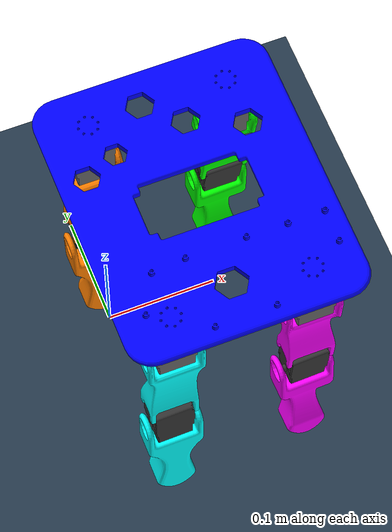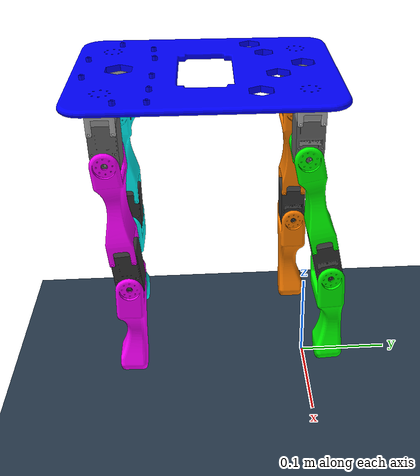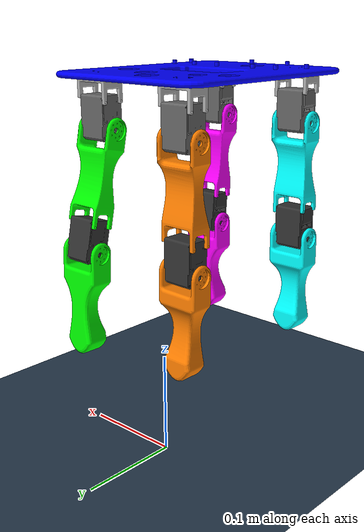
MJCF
<mujoco>
    <compiler angle="radian"/>

    <asset>
        <mesh name="base_mesh" file="mesh/base.STL" scale="0.001 0.001 0.001"/>

        <mesh name="hip_1_mesh" file="mesh/hip1.STL" scale="0.001 0.001 0.001"/>
        <mesh name="hip_3_mesh" file="mesh/hip3.STL" scale="0.001 0.001 0.001"/>
        <mesh name="hip_5_mesh" file="mesh/hip5.STL" scale="0.001 0.001 0.001"/>
        <mesh name="hip_7_mesh" file="mesh/hip7.STL" scale="0.001 0.001 0.001"/>

        <mesh name="hip_servo_1_mesh" file="mesh/hip_servo1.STL" scale="0.001 0.001 0.001"/>
        <mesh name="hip_servo_3_mesh" file="mesh/hip_servo3.STL" scale="0.001 0.001 0.001"/>
        <mesh name="hip_servo_5_mesh" file="mesh/hip_servo5.STL" scale="0.001 0.001 0.001"/>
        <mesh name="hip_servo_7_mesh" file="mesh/hip_servo7.STL" scale="0.001 0.001 0.001"/>

        <mesh name="thigh_1_mesh" file="mesh/upper_leg_1.STL" scale="0.001 0.001 0.001"/>
        <mesh name="thigh_3_mesh" file="mesh/upper_leg_3.STL" scale="0.001 0.001 0.001"/>
        <mesh name="thigh_5_mesh" file="mesh/upper_leg_5.STL" scale="0.001 0.001 0.001"/>
        <mesh name="thigh_7_mesh" file="mesh/upper_leg_7.STL" scale="0.001 0.001 0.001"/>

        <mesh name="knee_servo_1_mesh" file="mesh/knee_servo1.STL" scale="0.001 0.001 0.001"/>
        <mesh name="knee_servo_3_mesh" file="mesh/knee_servo3.STL" scale="0.001 0.001 0.001"/>
        <mesh name="knee_servo_5_mesh" file="mesh/knee_servo5.STL" scale="0.001 0.001 0.001"/>
        <mesh name="knee_servo_7_mesh" file="mesh/knee_servo7.STL" scale="0.001 0.001 0.001"/>

        <mesh name="lower_leg_1_mesh" file="mesh/lower_leg_1.STL" scale="0.001 0.001 0.001"/>
        <mesh name="lower_leg_3_mesh" file="mesh/lower_leg_3.STL" scale="0.001 0.001 0.001"/>
        <mesh name="lower_leg_5_mesh" file="mesh/lower_leg_5.STL" scale="0.001 0.001 0.001"/>
        <mesh name="lower_leg_7_mesh" file="mesh/lower_leg_7.STL" scale="0.001 0.001 0.001"/>

        <texture type="skybox" builtin="gradient" rgb1="1 1 1" rgb2=".6 .8 1" width="256" height="256" />
        <texture name="texplane" type="2d" builtin="checker" rgb1=".2 .3 .4" rgb2=".1 0.15 0.2" width="512" height="512"/>
        <material name="matplane" texture="texplane" texrepeat="1 1" texuniform="true" />

        <material name="base_mat" rgba="0 0 1 1"/> <material name="hip_attach_mat" rgba="0.7 0.7 0.7 1"/> <material name="hip_servo_mat" rgba="0.4 0.4 0.4 1"/> <material name="knee_servo_mat" rgba="0.2 0.2 0.2 1"/> <material name="leg_1_mat" rgba="0 1 0 1"/> <material name="leg_3_mat" rgba="1 0.5 0 1"/> <material name="leg_5_mat" rgba="1 0 1 1"/> <material name="leg_7_mat" rgba="0 1 1 1"/> </asset>

    <worldbody>
        <light directional="true" diffuse=".4 .4 .4" specular="0.1 0.1 0.1" pos="0 0 3" dir="0 0 -1" />
        <geom name="ground" type="plane" size="0 0 1" pos="0 0 0" quat="1 0 0 0" material="matplane" condim="1" />

        <body name="body_base" pos="0 0 0.3" euler="1.57 0 0"> <freejoint/>
            <inertial pos="0.0457 0.0666 0.1059"
                      mass="0.23328"
                      fullinertia="0.001213964 0.002007228 0.000794665 1.7e-8 -3.678e-6 1.48e-7" />
            <geom type="mesh" mesh="base_mesh" material="base_mat"/>

            <body name="hip_1">
                <inertial pos="0.1013 0.0586 0.0163" mass="0.00581"
                          fullinertia="4.95e-7 1.499e-6 1.323e-6 4.6e-8 0.0 0.0" />
                <geom type="mesh" mesh="hip_1_mesh" material="hip_attach_mat"/>
                <body name="hip_1_bracket">
                    <inertial pos="0.1006 0.0259 0.0164" mass="0.03441"
                              fullinertia="7.524e-6 4.641e-6 8.648e-6 2.8e-8 0.0 -2.6e-8" />
                    <geom type="mesh" mesh="hip_servo_1_mesh" material="hip_servo_mat"/>
                    <body name="thigh_1">
                        <joint name="hip_1_joint" type="hinge" pos="0.11634 0.01310 0.01798" axis="1 0 0" range="-1.5 1.5"/>
                        <inertial pos="0.1024 -0.0333 0.0083" mass="0.04892"
                                  fullinertia="2.8557e-5 1.0637e-5 3.4303e-5 -9.43e-7 -1.50e-7 4.349e-6" />
                        <geom type="mesh" mesh="thigh_1_mesh" material="leg_1_mat"/>
                        <body name="knee_1_servo">
                            <inertial pos="0.1038 -0.0978 -0.0044" mass="0.03441"
                                      fullinertia="7.525e-6 4.801e-6 8.489e-6 2.1e-8 1.0e-8 7.83e-7" />
                            <geom type="mesh" mesh="knee_servo_1_mesh" material="knee_servo_mat"/>
                            <body name="lower_leg_1">
                                <joint name="knee_1_joint" type="hinge" pos="0.118546 -0.110850 -0.0069576" axis="1 0 0" range="-1.5 1.5"/>
                                <inertial pos="0.1043 -0.1649 -0.0100" mass="0.06944"
                                          fullinertia="6.8075e-5 1.2139e-5 7.3272e-5 -2.1e-7 -1.25e-7 2.568e-6" />
                                <geom type="mesh" mesh="lower_leg_1_mesh" material="leg_1_mat"/>
                            </body>
                        </body>
                    </body>
                </body>
            </body>

            <body name="hip_3">
                <inertial pos="-0.0117 0.0586 0.0163" mass="0.00581"
                          fullinertia="4.95e-7 1.499e-6 1.323e-6 4.6e-8 0.0 0.0" />
                <geom type="mesh" mesh="hip_3_mesh" material="hip_attach_mat"/>
                <body name="hip_3_bracket">
                    <inertial pos="-0.0114 0.0259 0.0162" mass="0.03441"
                              fullinertia="7.524e-6 4.641e-6 8.648e-6 2.8e-8 0.0 2.6e-8" />
                    <geom type="mesh" mesh="hip_servo_3_mesh" material="hip_servo_mat"/>
                    <body name="thigh_3">
                        <joint name="hip_3_joint" type="hinge" pos="0.00331278 0.0125473 0.0161566" axis="1 0 0" range="-1.5 1.5"/>
                        <inertial pos="-0.0122 -0.0348 0.0163" mass="0.04896"
                                  fullinertia="2.8625e-5 9.912e-6 3.5151e-5 1.227e-6 4.5e-8 6.55e-7" />
                        <geom type="mesh" mesh="thigh_3_mesh" material="leg_3_mat"/>
                        <body name="knee_3_servo">
                            <inertial pos="-0.0136 -0.1006 0.0156" mass="0.03441"
                                      fullinertia="7.525e-6 4.641e-6 8.648e-6 -2.7e-8 -1.3e-8 2.4e-8" />
                            <geom type="mesh" mesh="knee_servo_3_mesh" material="knee_servo_mat"/>
                            <body name="lower_leg_3">
                                <joint name="knee_3_joint" type="hinge" pos="0.0013374 -0.11373 0.01535" axis="1 0 0" range="-1.5 1.5"/>
                                <inertial pos="-0.0118 -0.1685 0.0164" mass="0.06944"
                                          fullinertia="6.8054e-5 1.2050e-5 7.3382e-5 -1.041e-6 -1.4e-8 -7.7e-8" />
                                <geom type="mesh" mesh="lower_leg_3_mesh" material="leg_3_mat"/>
                            </body>
                        </body>
                    </body>
                </body>
            </body>

            <body name="hip_5">
                <inertial pos="0.1023 0.0586 0.1917" mass="0.00581"
                          fullinertia="4.95e-7 1.499e-6 1.323e-6 -4.6e-8 0.0 0.0" />
                <geom type="mesh" mesh="hip_5_mesh" material="hip_attach_mat"/>
                <body name="hip_5_bracket">
                    <inertial pos="0.1020 0.0258 0.1917" mass="0.03441"
                              fullinertia="7.524e-6 4.641e-6 8.649e-6 -2.8e-8 0.0 6.0e-9" />
                    <geom type="mesh" mesh="hip_servo_5_mesh" material="hip_servo_mat"/>
                    <body name="thigh_5">
                        <joint name="hip_5_joint" type="hinge" pos="0.08731278 0.0124678 0.1917023" axis="1 0 0" range="-1.5 1.5"/>
                        <inertial pos="0.1027 -0.0347 0.1882" mass="0.04896"
                                  fullinertia="2.8625e-5 9.951e-6 3.5112e-5 -1.227e-6 -4.5e-8 1.189e-6" />
                        <geom type="mesh" mesh="thigh_5_mesh" material="leg_5_mat"/>
                        <body name="knee_5_servo">
                            <inertial pos="0.1044 -0.1005 0.1834" mass="0.03441"
                                      fullinertia="7.525e-6 4.673e-6 8.616e-6 -1.9e-8 -2.6e-8 3.57e-7" />
                            <geom type="mesh" mesh="knee_servo_5_mesh" material="knee_servo_mat"/>
                            <body name="lower_leg_5">
                                <joint name="knee_5_joint" type="hinge" pos="0.089706 -0.11386 0.182579" axis="1 0 0" range="-1.5 1.5"/>
                                <inertial pos="0.1049 -0.1683 0.1832" mass="0.06944"
                                          fullinertia="6.8063e-5 1.2141e-5 7.3282e-5 -7.94e-7 -3.9e-8 -2.46e-6" />
                                <geom type="mesh" mesh="lower_leg_5_mesh" material="leg_5_mat"/>
                            </body>
                        </body>
                    </body>
                </body>
            </body>

            <body name="hip_7">
                <inertial pos="-0.0107 0.0586 0.1917" mass="0.00581"
                          fullinertia="4.95e-7 1.499e-6 1.323e-6 -4.6e-8 0.0 0.0" />
                <geom type="mesh" mesh="hip_7_mesh" material="hip_attach_mat"/>
                <body name="hip_7_bracket">
                    <inertial pos="-0.0110 0.0261 0.1918" mass="0.03441"
                              fullinertia="7.524e-6 4.641e-6 8.649e-6 -2.8e-8 0.0 -9.0e-9" />
                    <geom type="mesh" mesh="hip_servo_7_mesh" material="hip_servo_mat"/>
                    <body name="thigh_7">
                        <joint name="hip_7_joint" type="hinge" pos="-0.025687 0.012735 0.19182" axis="1 0 0" range="-1.5 1.5"/>
                        <inertial pos="-0.0118 -0.0345 0.1920" mass="0.04892"
                                  fullinertia="2.8557e-5 9.884e-6 3.5056e-5 9.54e-7 4.5e-8 7.18e-7" />
                        <geom type="mesh" mesh="thigh_7_mesh" material="leg_7_mat"/>
                        <body name="knee_7_servo">
                            <inertial pos="-0.0128 -0.1006 0.1913" mass="0.03441"
                                      fullinertia="7.524e-6 4.642e-6 8.648e-6 -3.7e-8 -1.5e-8 -3.0e-8" />
                            <geom type="mesh" mesh="knee_servo_7_mesh" material="knee_servo_mat"/>
                            <body name="lower_leg_7">
                                <joint name="knee_7_joint" type="hinge" pos="-0.02748 -0.11399 0.191629" axis="1 0 0" range="-1.5 1.5"/>
                                <inertial pos="-0.0130 -0.1683 0.1928" mass="0.06944"
                                          fullinertia="6.8073e-5 1.2031e-5 7.3381e-5 6.7e-8 4.0e-9 -1.72e-7" />
                                <geom type="mesh" mesh="lower_leg_7_mesh" material="leg_7_mat"/>
                            </body>
                        </body>
                    </body>
                </body>
            </body>

        </body>
    </worldbody>

    <actuator>
        <position name="hip_1_servo" joint="hip_1_joint" kp="20"/>
        <position name="hip_3_servo" joint="hip_3_joint" kp="20"/>
        <position name="hip_5_servo" joint="hip_5_joint" kp="20"/>
        <position name="hip_7_servo" joint="hip_7_joint" kp="20"/>

        <position name="knee_1_servo" joint="knee_1_joint" kp="20"/>
        <position name="knee_3_servo" joint="knee_3_joint" kp="20"/>
        <position name="knee_5_servo" joint="knee_5_joint" kp="20"/>
        <position name="knee_7_servo" joint="knee_7_joint" kp="20"/>
    </actuator>

</mujoco>
